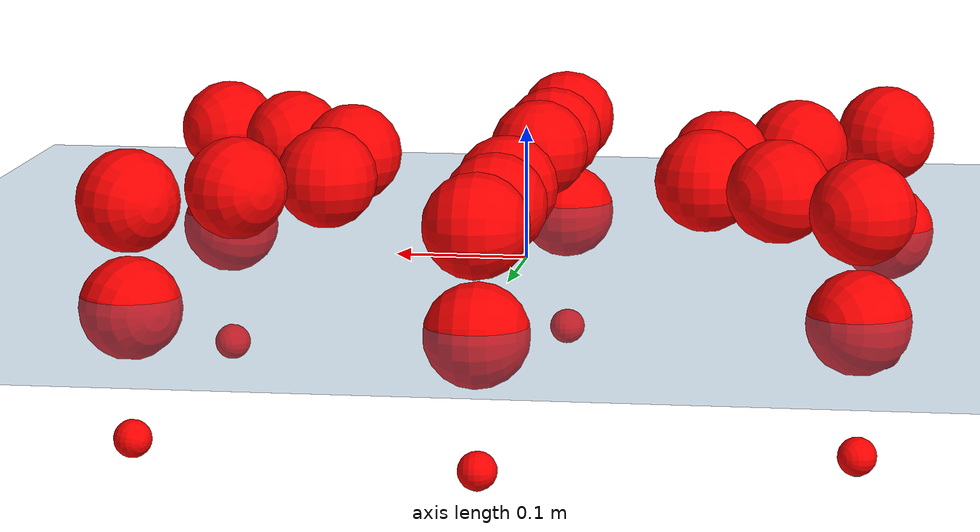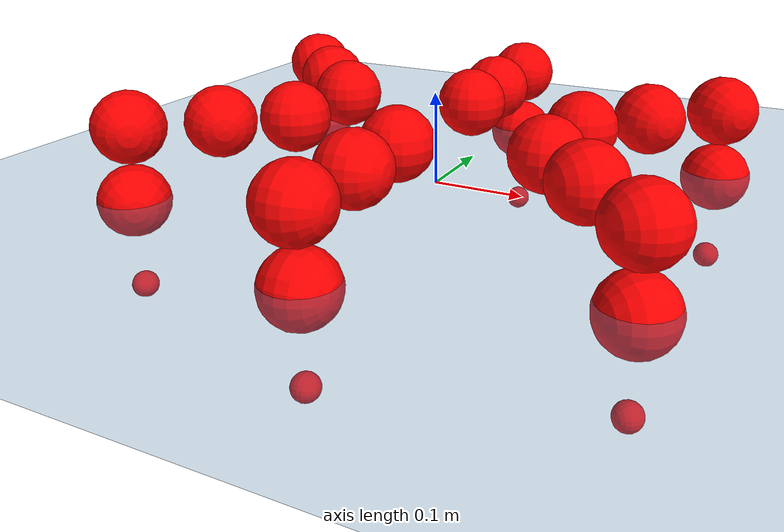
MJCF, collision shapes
<mujoco model="Golem">
  <compiler angle="radian" assetdir="assets" balanceinertia="true" inertiafromgeom="false"/>

  <option timestep="0.005" density="1.2" viscosity="2e-05"/>

  <size nkey="1"/>

  <visual>
    <quality shadowsize="8192"/>
    <map shadowclip="0.5"/>
  </visual>

  <default>
    <default class="/">
      <joint armature="0.01" damping="0.01" frictionloss="0.01"/>
      <geom contype="0" conaffinity="0" group="1" solref="-1000 -80"/>
      <site size="0.01 0.005 0.005" group="5"/>
      <general forcelimited="true" biastype="affine" gainprm="25" biasprm="0 -25 -0.5"/>
      <default class="visual">
        <geom type="mesh" group="2"/>
      </default>
      <default class="collision">
        <geom group="3"/>
      </default>
      <default class="foot">
        <geom size="0.01 0 0" condim="6" group="4" priority="1" solimp="0.015 1 0.01"/>
      </default>
      <default class="reward_collision_sphere">
        <geom group="5" rgba="1 0 0 1"/>
      </default>
    </default>
  </default>

  <asset>
    <texture type="skybox" colorspace="auto" name="//unnamed_texture_0" builtin="gradient" rgb1="0.95 0.95 0.95" rgb2="0.95 0.95 0.95" width="100" height="600"/>
    <texture type="2d" colorspace="auto" name="texplane" builtin="checker" rgb1="0.345 0.575 0.748" rgb2="0.345 0.575 0.748" markrgb="1 1 1" width="512" height="512"/>
    <material name="MatPlane" class="/" texture="texplane" texuniform="true" texrepeat="2 2" specular="0.9"/>
    <mesh name="body" class="/" file="body.stl" scale="0.001 0.001 0.001"/>
    <mesh name="coxa" class="/" file="coxa.stl" scale="0.001 0.001 0.001"/>
    <mesh name="femur" class="/" file="femur.stl" scale="0.001 0.001 0.001"/>
    <mesh name="tibia" class="/" file="tibia.stl" scale="0.001 0.001 0.001"/>
    <mesh name="tarsus" class="/" file="tarsus.stl" scale="0.001 0.001 0.001"/>
  </asset>

  <worldbody>
    <geom name="floor" class="/" size="100 100 0.125" type="plane" group="0" material="MatPlane"/>
    <light name="toplight_shadow" class="/" pos="0 0 5" dir="0.0990148 0.0990148 -0.990148" type="directional" ambient="0.04 0.04 0.04" diffuse="0.55 0.55 0.55" specular="0.12 0.12 0.12"/>
    <light name="toplight_fill" class="/" pos="0 0 5" dir="0.0990148 0.0990148 -0.990148" type="directional" castshadow="false" ambient="0.04 0.04 0.04" diffuse="0.3 0.3 0.3" specular="0.08 0.08 0.08"/>
    <body name="trunk" pos="-8.78247e-05 0.000949862 -0.00262111" quat="0.999999 -0.000198657 0.00108568 0.000871467">
      <inertial pos="0.00173155 -0.00166539 -0.00104084" quat="0.999996 0.00183657 0.00162596 0.00118662" mass="3.04684" diaginertia="0.00608186 0.00465608 0.0153677"/>
      <joint name="//unnamed_joint_0" type="free"/>
      <geom name="//unnamed_geom_1" class="/" pos="0 0 0.0697413" quat="1 0 0 0" type="mesh" rgba="0.9 0.9 0.9 1" mesh="body"/>
      <site name="imu" class="/" pos="0.118383 0.0139384 0.119253" size="0.00954346"/>
      <camera name="track" class="/" pos="0 -1.73283 0" quat="0.707107 0.707107 0 0" mode="trackcom"/>
      <camera name="ego_camera" class="/" pos="0.117899 0 0.108971" quat="-0.5 -0.5 0.5 0.5"/>
      <body name="coxa_RR" pos="-0.1626 -0.0720185 0.0718482" quat="0.382798 9.28791e-05 0.000927237 -0.923831">
        <inertial pos="0.00278696 0.000510181 -0.00202973" quat="0.999972 0.000380001 -0.00251277 0.00709323" mass="0.179832" diaginertia="0.00612468 0.0050439 0.0156963"/>
        <joint name="coxa_joint_RR" class="/" pos="0 0 0" axis="-8.71478e-05 0.000674029 -1" range="-3.11051 3.13141" armature="0.00896237" damping="0" frictionloss="0.0100181"/>
        <geom name="//unnamed_geom_2" class="/" type="mesh" rgba="0.2 0.2 0.2 1" mesh="coxa"/>
        <geom name="//unnamed_geom_3" class="reward_collision_sphere" size="0.0381738" pos="-0.0272075 0 0"/>
        <body name="femur_RR" pos="0.0513733 -0.00134626 0.00161088" quat="0.499394 -0.499417 0.500607 0.500581">
          <inertial pos="7.14252e-05 0.00215189 0.00216007" quat="0.999918 0.000266036 0.0007158 0.0128194" mass="0.166457" diaginertia="0.00610853 0.00461592 0.0148685"/>
          <joint name="femur_joint_RR" class="/" pos="0 0 0" axis="-0.00512212 -0.00162143 -0.999986" range="-3.12918 3.12801" armature="0.0108211" damping="0.00727138" frictionloss="0.00962577"/>
          <geom name="//unnamed_geom_4" class="/" type="mesh" rgba="0.9 0.9 0.9 1" mesh="femur"/>
          <geom name="//unnamed_geom_5" class="reward_collision_sphere" size="0.0381738"/>
          <body name="tibia_RR" pos="-0.00277846 -0.0921667 0.000333068" quat="4.76552e-06 1 -1.38726e-05 7.3515e-06">
            <inertial pos="-0.000619283 0.00253948 -0.000859822" quat="1 4.95535e-05 -0.000193331 0.000350387" mass="0.167742" diaginertia="0.00594767 0.0046877 0.0149921"/>
            <joint name="tibia_joint_RR" class="/" pos="0 0 0" axis="-0.000939943 -0.0135742 0.999907" range="-3.09062 3.12566" armature="0.00834421" damping="0.00805317" frictionloss="0.0103979"/>
            <geom name="//unnamed_geom_6" class="/" type="mesh" rgba="0.2 0.2 0.2 1" mesh="tibia"/>
            <geom name="//unnamed_geom_7" class="reward_collision_sphere" size="0.0381738"/>
            <body name="tarsus_RR" pos="0.0792018 0.00297323 -0.00213407" quat="0.999999 0.000974521 0.000467742 -0.00028586">
              <inertial pos="0.0564958 0.00127591 0.00280518" quat="0.495489 0.495113 0.502932 0.506373" mass="0.167783" diaginertia="0.00586213 0.0047137 0.0151902"/>
              <joint name="tarsus_joint_RR" class="/" pos="0 0 0" axis="0.000261891 -0.014216 0.999899" range="-3.18461 3.15642" armature="0.00928301" damping="0.014402" frictionloss="0.00903393"/>
              <geom name="//unnamed_geom_8" class="/" type="mesh" rgba="0.9 0.9 0.9 1" mesh="tarsus"/>
              <geom name="foot_1" class="foot" size="0.00856271" pos="0.101575 0 0" quat="0 -0.707107 0 0.707107"/>
              <geom name="//unnamed_geom_10" class="reward_collision_sphere" size="0.0381738"/>
              <geom name="//unnamed_geom_11" class="reward_collision_sphere" size="0.0143152" pos="0.0974934 0 0"/>
              <site name="foot_1" class="foot" pos="0.101575 0 0" quat="0 -0.707107 0 0.707107" size="0.00954346"/>
            </body>
          </body>
        </body>
      </body>
      <body name="coxa_RM" pos="0.00175729 -0.117274 0.0723749" quat="0.707222 -0.000251706 -0.00014183 -0.706992">
        <inertial pos="-0.000731044 -0.000308764 -0.0026455" quat="0.999946 -0.00690709 0.000306719 -0.00774059" mass="0.173854" diaginertia="0.00624796 0.00515619 0.0163076"/>
        <joint name="coxa_joint_RM" class="/" pos="0 0 0" axis="-0.00892386 -0.0022708 -0.999958" range="-3.14442 3.09554" armature="0.00954292" damping="0.0102895" frictionloss="0.0108089"/>
        <geom name="//unnamed_geom_12" class="/" type="mesh" rgba="0.2 0.2 0.2 1" mesh="coxa"/>
        <geom name="//unnamed_geom_13" class="reward_collision_sphere" size="0.0381738" pos="-0.0272075 0 0"/>
        <body name="femur_RM" pos="0.0522544 -0.00101959 -0.00120597" quat="0.500042 -0.4995 0.500311 0.500146">
          <inertial pos="0.000321646 0.00265997 0.000608268" quat="0.999988 -0.00337123 -0.00259957 -0.00226005" mass="0.178759" diaginertia="0.00592961 0.00487836 0.0150113"/>
          <joint name="femur_joint_RM" class="/" pos="0 0 0" axis="-0.000943024 0.00032034 -1" range="-3.08395 3.17807" armature="0.0109062" damping="0.0177386" frictionloss="0.0108129"/>
          <geom name="//unnamed_geom_14" class="/" type="mesh" rgba="0.9 0.9 0.9 1" mesh="femur"/>
          <geom name="//unnamed_geom_15" class="reward_collision_sphere" size="0.0381738"/>
          <body name="tibia_RM" pos="-0.000232724 -0.0932362 7.13194e-05" quat="-0.000477544 1 -0.000371152 0.000325214">
            <inertial pos="-0.000729177 7.69375e-05 0.00285607" quat="0.999993 0.00177893 -0.00161578 -0.0027146" mass="0.179467" diaginertia="0.00613954 0.00486315 0.0149985"/>
            <joint name="tibia_joint_RM" class="/" pos="0 0 0" axis="0.00884989 -0.00630191 0.999941" range="-3.11314 3.19383" armature="0.00840618" damping="0.0190774" frictionloss="0.0107341"/>
            <geom name="//unnamed_geom_16" class="/" type="mesh" rgba="0.2 0.2 0.2 1" mesh="tibia"/>
            <geom name="//unnamed_geom_17" class="reward_collision_sphere" size="0.0381738"/>
            <body name="tarsus_RM" pos="0.0780197 -0.00159554 -7.0682e-05" quat="0.999999 0.000361767 -0.00134337 -7.49827e-05">
              <inertial pos="0.0549455 -0.000808817 0.000694054" quat="0.501629 0.499863 0.499471 0.499033" mass="0.185635" diaginertia="0.00637229 0.00503087 0.0158843"/>
              <joint name="tarsus_joint_RM" class="/" pos="0 0 0" axis="-0.00196504 0.00522124 0.999984" range="-3.1201 3.15131" armature="0.00873057" damping="0.0161484" frictionloss="0.00934668"/>
              <geom name="//unnamed_geom_18" class="/" type="mesh" rgba="0.9 0.9 0.9 1" mesh="tarsus"/>
              <geom name="foot_2" class="foot" size="0.00862169" pos="0.101575 0 0" quat="0 -0.707107 0 0.707107"/>
              <geom name="//unnamed_geom_20" class="reward_collision_sphere" size="0.0381738"/>
              <geom name="//unnamed_geom_21" class="reward_collision_sphere" size="0.0143152" pos="0.0974934 0 0"/>
              <site name="foot_2" class="foot" pos="0.101575 0 0" quat="0 -0.707107 0 0.707107" size="0.00954346"/>
            </body>
          </body>
        </body>
      </body>
      <body name="coxa_RF" pos="0.162533 -0.0737877 0.0718604" quat="0.923901 0.000397808 0.000347062 -0.382632">
        <inertial pos="-0.00234244 -0.000928507 -0.00263165" quat="0.999919 0.00689979 -0.00743938 -0.00768493" mass="0.172612" diaginertia="0.00623752 0.00491692 0.0158856"/>
        <joint name="coxa_joint_RF" class="/" pos="0 0 0" axis="0.00371849 0.00230786 -0.99999" range="-3.15688 3.08651" armature="0.00994784" damping="0.0185241" frictionloss="0.0107957"/>
        <geom name="//unnamed_geom_22" class="/" type="mesh" rgba="0.2 0.2 0.2 1" mesh="coxa"/>
        <geom name="//unnamed_geom_23" class="reward_collision_sphere" size="0.0381738" pos="-0.0272075 0 0"/>
        <body name="femur_RF" pos="0.0556502 -0.00165165 0.0010967" quat="0.501328 -0.499569 0.499781 0.499321">
          <inertial pos="-0.000873233 0.000291309 0.000258931" quat="0.999939 -0.00360721 6.16389e-05 0.010434" mass="0.174192" diaginertia="0.00597033 0.0047898 0.0148917"/>
          <joint name="femur_joint_RF" class="/" pos="0 0 0" axis="0.00248329 0.00429256 -0.999988" range="-3.10583 3.13694" armature="0.00921808" damping="0.00994049" frictionloss="0.00903521"/>
          <geom name="//unnamed_geom_24" class="/" type="mesh" rgba="0.9 0.9 0.9 1" mesh="femur"/>
          <geom name="//unnamed_geom_25" class="reward_collision_sphere" size="0.0381738"/>
          <body name="tibia_RF" pos="0.00235392 -0.0914395 0.00182743" quat="-0.000303541 1 0.000457301 -7.67434e-05">
            <inertial pos="0.000659258 -0.00244017 -0.00281437" quat="0.999912 -0.00249814 -0.00303451 0.0127094" mass="0.173083" diaginertia="0.00592685 0.0048061 0.015424"/>
            <joint name="tibia_joint_RF" class="/" pos="0 0 0" axis="-0.00386618 0.0111467 0.99993" stiffness="0.0115775" range="-3.17828 3.13271" armature="0.00941209" damping="0.0182287" frictionloss="0.00837844"/>
            <geom name="//unnamed_geom_26" class="/" type="mesh" rgba="0.2 0.2 0.2 1" mesh="tibia"/>
            <geom name="//unnamed_geom_27" class="reward_collision_sphere" size="0.0381738"/>
            <body name="tarsus_RF" pos="0.0793155 -0.00186772 -0.00136697" quat="1 -3.63851e-05 3.32916e-05 -2.14597e-05">
              <inertial pos="0.0543731 -0.000762088 0.00103634" quat="0.497439 0.501101 0.498431 0.50301" mass="0.168804" diaginertia="0.00586785 0.0046066 0.0148309"/>
              <joint name="tarsus_joint_RF" class="/" pos="0 0 0" axis="-0.00971367 -0.00711226 0.999928" stiffness="0.0035907" range="-3.12001 3.15077" armature="0.00939041" damping="0" frictionloss="0.010645"/>
              <geom name="//unnamed_geom_28" class="/" type="mesh" rgba="0.9 0.9 0.9 1" mesh="tarsus"/>
              <geom name="foot_3" class="foot" size="0.00996559" pos="0.101575 0 0" quat="0 -0.707107 0 0.707107"/>
              <geom name="//unnamed_geom_30" class="reward_collision_sphere" size="0.0381738"/>
              <geom name="//unnamed_geom_31" class="reward_collision_sphere" size="0.0143152" pos="0.0974934 0 0"/>
              <site name="foot_3" class="foot" pos="0.101575 0 0" quat="0 -0.707107 0 0.707107" size="0.00954346"/>
            </body>
          </body>
        </body>
      </body>
      <body name="coxa_LR" pos="-0.160911 0.0733811 0.0739316" quat="0.382723 -0.000345175 0.00142092 0.923862">
        <inertial pos="-0.00183852 0.00259253 -0.00247327" quat="0.999994 -0.000595323 -0.00296887 0.00154524" mass="0.173297" diaginertia="0.00604025 0.00467127 0.0151871"/>
        <joint name="coxa_joint_LR" class="/" pos="0 0 0" axis="-0.0135409 0.0103873 -0.999854" stiffness="0.00884082" range="-3.17281 3.19131" armature="0.0093689" damping="0.0159473" frictionloss="0.0108669"/>
        <geom name="//unnamed_geom_32" class="/" type="mesh" rgba="0.2 0.2 0.2 1" mesh="coxa"/>
        <geom name="//unnamed_geom_33" class="reward_collision_sphere" size="0.0381738" pos="-0.0272075 0 0"/>
        <body name="femur_LR" pos="0.0528182 0.00156045 0.00244304" quat="0.499894 -0.499759 0.499923 0.500423">
          <inertial pos="-0.00123149 0.0027004 0.000596533" quat="0.99993 -0.0102632 -0.00595462 -0.000295883" mass="0.170758" diaginertia="0.00637638 0.0048773 0.0149199"/>
          <joint name="femur_joint_LR" class="/" pos="0 0 0" axis="0.00845357 0.00261825 0.999961" range="-3.17733 3.16213" armature="0.0103776" damping="0.00577451" frictionloss="0.00969587"/>
          <geom name="//unnamed_geom_34" class="/" type="mesh" rgba="0.9 0.9 0.9 1" mesh="femur"/>
          <geom name="//unnamed_geom_35" class="reward_collision_sphere" size="0.0381738"/>
          <body name="tibia_LR" pos="0.00159137 -0.0942005 -0.00340345" quat="-0.000185473 1 1.62814e-07 -0.000384644">
            <inertial pos="-0.00212449 0.000803016 0.00293724" quat="0.999907 -0.00680853 0.0038349 0.0112072" mass="0.178612" diaginertia="0.006047 0.00495996 0.0150207"/>
            <joint name="tibia_joint_LR" class="/" pos="0 0 0" axis="0.00228958 0.00415149 -0.999989" range="-3.09302 3.1947" armature="0.0080966" damping="0" frictionloss="0.0094784"/>
            <geom name="//unnamed_geom_36" class="/" type="mesh" rgba="0.2 0.2 0.2 1" mesh="tibia"/>
            <geom name="//unnamed_geom_37" class="reward_collision_sphere" size="0.0381738"/>
            <body name="tarsus_LR" pos="0.0797004 -0.000908107 0.00149035" quat="1 -4.62237e-05 -4.58926e-05 4.85165e-06">
              <inertial pos="0.054272 -0.00254444 -0.000801484" quat="0.500109 0.499508 0.500768 0.499615" mass="0.166859" diaginertia="0.00608172 0.00495178 0.0156505"/>
              <joint name="tarsus_joint_LR" class="/" pos="0 0 0" axis="-0.000779139 0.00157446 -0.999998" stiffness="0.0026096" range="-3.12955 3.18952" armature="0.00955729" damping="0.00418917" frictionloss="0.00838304"/>
              <geom name="//unnamed_geom_38" class="/" type="mesh" rgba="0.9 0.9 0.9 1" mesh="tarsus"/>
              <geom name="foot_4" class="foot" size="0.0104576" pos="0.101575 0 0" quat="0.707107 0 -0.707107 0"/>
              <geom name="//unnamed_geom_40" class="reward_collision_sphere" size="0.0381738"/>
              <geom name="//unnamed_geom_41" class="reward_collision_sphere" size="0.0143152" pos="0.0974934 0 0"/>
              <site name="foot_4" class="foot" pos="0.101575 0 0" quat="0.707107 0 -0.707107 0" size="0.00954346"/>
            </body>
          </body>
        </body>
      </body>
      <body name="coxa_LM" pos="0.002895 0.1135 0.0718786" quat="0.70718 -9.9781e-06 -0.000221925 0.707033">
        <inertial pos="0.00060277 -1.65998e-05 -0.00220087" quat="0.999992 -0.0017538 -0.00355851 0.00111586" mass="0.171262" diaginertia="0.00627578 0.0048541 0.0153966"/>
        <joint name="coxa_joint_LM" class="/" pos="0 0 0" axis="-0.00350444 0.0115743 -0.999927" range="-3.12279 3.14282" armature="0.00988943" damping="0.00394245" frictionloss="0.00949204"/>
        <geom name="//unnamed_geom_42" class="/" type="mesh" rgba="0.2 0.2 0.2 1" mesh="coxa"/>
        <geom name="//unnamed_geom_43" class="reward_collision_sphere" size="0.0381738" pos="-0.0272075 0 0"/>
        <body name="femur_LM" pos="0.050635 0.0022738 -2.3731e-05" quat="0.500493 -0.499496 0.500123 0.499887">
          <inertial pos="-0.002717 -0.000167367 -0.00201289" quat="0.999902 0.0010703 0.00155553 0.0138966" mass="0.168156" diaginertia="0.00600302 0.004712 0.015025"/>
          <joint name="femur_joint_LM" class="/" pos="0 0 0" axis="0.00883527 0.000406811 0.999961" stiffness="0.00334633" range="-3.14415 3.09692" armature="0.00846209" damping="0" frictionloss="0.00821358"/>
          <geom name="//unnamed_geom_44" class="/" type="mesh" rgba="0.9 0.9 0.9 1" mesh="femur"/>
          <geom name="//unnamed_geom_45" class="reward_collision_sphere" size="0.0381738"/>
          <body name="tibia_LM" pos="-0.000552612 -0.0911023 -0.000188917" quat="0.0010056 0.999999 -0.000205657 -6.44887e-05">
            <inertial pos="0.00175451 0.000392352 -4.43821e-05" quat="0.999989 -0.00203156 -0.00231085 -0.0034179" mass="0.174819" diaginertia="0.00601285 0.00475515 0.0149918"/>
            <joint name="tibia_joint_LM" class="/" pos="0 0 0" axis="-0.0120576 0.0087446 -0.999889" range="-3.08412 3.09696" armature="0.0102519" damping="0.000997254" frictionloss="0.0108859"/>
            <geom name="//unnamed_geom_46" class="/" type="mesh" rgba="0.2 0.2 0.2 1" mesh="tibia"/>
            <geom name="//unnamed_geom_47" class="reward_collision_sphere" size="0.0381738"/>
            <body name="tarsus_LM" pos="0.0778847 -0.00144795 0.000113335" quat="1 8.13492e-05 -0.000191665 -9.9829e-05">
              <inertial pos="0.052572 -0.00233988 0.000640797" quat="0.507325 0.501265 0.493007 0.498296" mass="0.169196" diaginertia="0.00600043 0.00467316 0.0148511"/>
              <joint name="tarsus_joint_LM" class="/" pos="0 0 0" axis="0.00986647 -0.00726462 -0.999925" stiffness="0.0120445" range="-3.14398 3.14511" armature="0.00977632" damping="0.0196471" frictionloss="0.0105688"/>
              <geom name="//unnamed_geom_48" class="/" type="mesh" rgba="0.9 0.9 0.9 1" mesh="tarsus"/>
              <geom name="foot_5" class="foot" size="0.0105167" pos="0.101575 0 0" quat="0.707107 0 -0.707107 0"/>
              <geom name="//unnamed_geom_50" class="reward_collision_sphere" size="0.0381738"/>
              <geom name="//unnamed_geom_51" class="reward_collision_sphere" size="0.0143152" pos="0.0974934 0 0"/>
              <site name="foot_5" class="foot" pos="0.101575 0 0" quat="0.707107 0 -0.707107 0" size="0.00954346"/>
            </body>
          </body>
        </body>
      </body>
      <body name="coxa_LF" pos="0.163588 0.0702568 0.0699754" quat="0.923787 -9.0544e-06 -0.000163266 0.382906">
        <inertial pos="-0.00233055 -0.00179554 -0.00264567" quat="0.999999 -0.000733669 -0.000165813 0.00117425" mass="0.166933" diaginertia="0.00592652 0.004595 0.0153464"/>
        <joint name="coxa_joint_LF" class="/" pos="0 0 0" axis="0.00928215 -0.000407356 -0.999957" range="-3.18593 3.14058" armature="0.0100134" damping="0.0112581" frictionloss="0.00820212"/>
        <geom name="//unnamed_geom_52" class="/" type="mesh" rgba="0.2 0.2 0.2 1" mesh="coxa"/>
        <geom name="//unnamed_geom_53" class="reward_collision_sphere" size="0.0381738" pos="-0.0272075 0 0"/>
        <body name="femur_LF" pos="0.0555512 0.00247921 0.00110779" quat="0.499799 -0.501082 0.499717 0.4994">
          <inertial pos="-0.000355942 -0.00257661 0.000225704" quat="1 -0.000533608 0.000303838 0.000106658" mass="0.168859" diaginertia="0.00575568 0.00472576 0.0148458"/>
          <joint name="femur_joint_LF" class="/" pos="0 0 0" axis="0.0124375 0.00757458 0.999894" range="-3.17696 3.19559" armature="0.00921307" damping="0.00441729" frictionloss="0.00938734"/>
          <geom name="//unnamed_geom_54" class="/" type="mesh" rgba="0.9 0.9 0.9 1" mesh="femur"/>
          <geom name="//unnamed_geom_55" class="reward_collision_sphere" size="0.0381738"/>
          <body name="tibia_LF" pos="-0.0003054 -0.0934568 0.000410254" quat="-0.000140035 0.999999 -9.62473e-05 -0.00109508">
            <inertial pos="0.00239101 0.00275919 -0.00207206" quat="0.999993 0.00181172 -0.000907809 -0.00319693" mass="0.179931" diaginertia="0.00594525 0.00490164 0.014943"/>
            <joint name="tibia_joint_LF" class="/" pos="0 0 0" axis="0.00726932 -0.00961991 -0.999927" stiffness="0.0012887" range="-3.15489 3.08279" armature="0.00903133" damping="0.00876118" frictionloss="0.00957982"/>
            <geom name="//unnamed_geom_56" class="/" type="mesh" rgba="0.2 0.2 0.2 1" mesh="tibia"/>
            <geom name="//unnamed_geom_57" class="reward_collision_sphere" size="0.0381738"/>
            <body name="tarsus_LF" pos="0.0784842 0.00122015 -0.00310075" quat="1 -6.40977e-05 9.99922e-06 9.83407e-05">
              <inertial pos="0.0534887 0.000310755 7.15105e-05" quat="0.506604 0.494619 0.499401 0.499303" mass="0.171372" diaginertia="0.00609489 0.00491242 0.01561"/>
              <joint name="tarsus_joint_LF" class="/" pos="0 0 0" axis="5.28905e-05 -0.00606289 -0.999982" stiffness="0.0285391" range="-3.10243 3.08399" armature="0.00926189" damping="0.035489" frictionloss="0.00870502"/>
              <geom name="//unnamed_geom_58" class="/" type="mesh" rgba="0.9 0.9 0.9 1" mesh="tarsus"/>
              <geom name="foot_6" class="foot" size="0.00966131" pos="0.101575 0 0" quat="0.707107 0 -0.707107 0"/>
              <geom name="//unnamed_geom_60" class="reward_collision_sphere" size="0.0381738"/>
              <geom name="//unnamed_geom_61" class="reward_collision_sphere" size="0.0143152" pos="0.0974934 0 0"/>
              <site name="foot_6" class="foot" pos="0.101575 0 0" quat="0.707107 0 -0.707107 0" size="0.00954346"/>
            </body>
          </body>
        </body>
      </body>
    </body>
  </worldbody>

  <contact>
    <pair class="/" geom1="floor" geom2="foot_1" name="//unnamed_contact_0"/>
    <pair class="/" geom1="floor" geom2="foot_2" name="//unnamed_contact_1"/>
    <pair class="/" geom1="floor" geom2="foot_3" name="//unnamed_contact_2"/>
    <pair class="/" geom1="floor" geom2="foot_4" name="//unnamed_contact_3"/>
    <pair class="/" geom1="floor" geom2="foot_5" name="//unnamed_contact_4"/>
    <pair class="/" geom1="floor" geom2="foot_6" name="//unnamed_contact_5"/>
  </contact>

  <actuator>
    <general name="coxa_joint_RR" class="/" joint="coxa_joint_RR" forcerange="-7.02068 7.02068" gainprm="22.9111" biasprm="0 -22.9111 -0.50817"/>
    <general name="femur_joint_RR" class="/" joint="femur_joint_RR" forcerange="-6.97344 6.97344" gainprm="22.9111" biasprm="0 -22.9111 -0.50817"/>
    <general name="tibia_joint_RR" class="/" joint="tibia_joint_RR" forcerange="-6.9043 6.9043" gainprm="22.9111" biasprm="0 -22.9111 -0.50817"/>
    <general name="tarsus_joint_RR" class="/" joint="tarsus_joint_RR" forcerange="-7.70335 7.70335" gainprm="22.9111" biasprm="0 -22.9111 -0.50817"/>
    <general name="coxa_joint_RM" class="/" joint="coxa_joint_RM" forcerange="-6.65798 6.65798" gainprm="22.9111" biasprm="0 -22.9111 -0.50817"/>
    <general name="femur_joint_RM" class="/" joint="femur_joint_RM" forcerange="-7.70009 7.70009" gainprm="22.9111" biasprm="0 -22.9111 -0.50817"/>
    <general name="tibia_joint_RM" class="/" joint="tibia_joint_RM" forcerange="-7.03555 7.03555" gainprm="22.9111" biasprm="0 -22.9111 -0.50817"/>
    <general name="tarsus_joint_RM" class="/" joint="tarsus_joint_RM" forcerange="-7.34829 7.34829" gainprm="22.9111" biasprm="0 -22.9111 -0.50817"/>
    <general name="coxa_joint_RF" class="/" joint="coxa_joint_RF" forcerange="-6.2309 6.2309" gainprm="22.9111" biasprm="0 -22.9111 -0.50817"/>
    <general name="femur_joint_RF" class="/" joint="femur_joint_RF" forcerange="-6.69074 6.69074" gainprm="22.9111" biasprm="0 -22.9111 -0.50817"/>
    <general name="tibia_joint_RF" class="/" joint="tibia_joint_RF" forcerange="-7.18492 7.18492" gainprm="22.9111" biasprm="0 -22.9111 -0.50817"/>
    <general name="tarsus_joint_RF" class="/" joint="tarsus_joint_RF" forcerange="-6.71305 6.71305" gainprm="22.9111" biasprm="0 -22.9111 -0.50817"/>
    <general name="coxa_joint_LR" class="/" joint="coxa_joint_LR" forcerange="-7.09659 7.09659" gainprm="22.9111" biasprm="0 -22.9111 -0.50817"/>
    <general name="femur_joint_LR" class="/" joint="femur_joint_LR" forcerange="-6.9345 6.9345" gainprm="22.9111" biasprm="0 -22.9111 -0.50817"/>
    <general name="tibia_joint_LR" class="/" joint="tibia_joint_LR" forcerange="-7.22461 7.22461" gainprm="22.9111" biasprm="0 -22.9111 -0.50817"/>
    <general name="tarsus_joint_LR" class="/" joint="tarsus_joint_LR" forcerange="-6.88582 6.88582" gainprm="22.9111" biasprm="0 -22.9111 -0.50817"/>
    <general name="coxa_joint_LM" class="/" joint="coxa_joint_LM" forcerange="-7.11395 7.11395" gainprm="22.9111" biasprm="0 -22.9111 -0.50817"/>
    <general name="femur_joint_LM" class="/" joint="femur_joint_LM" forcerange="-7.17211 7.17211" gainprm="22.9111" biasprm="0 -22.9111 -0.50817"/>
    <general name="tibia_joint_LM" class="/" joint="tibia_joint_LM" forcerange="-6.98487 6.98487" gainprm="22.9111" biasprm="0 -22.9111 -0.50817"/>
    <general name="tarsus_joint_LM" class="/" joint="tarsus_joint_LM" forcerange="-7.30676 7.30676" gainprm="22.9111" biasprm="0 -22.9111 -0.50817"/>
    <general name="coxa_joint_LF" class="/" joint="coxa_joint_LF" forcerange="-6.4124 6.4124" gainprm="22.9111" biasprm="0 -22.9111 -0.50817"/>
    <general name="femur_joint_LF" class="/" joint="femur_joint_LF" forcerange="-6.88893 6.88893" gainprm="22.9111" biasprm="0 -22.9111 -0.50817"/>
    <general name="tibia_joint_LF" class="/" joint="tibia_joint_LF" forcerange="-7.06151 7.06151" gainprm="22.9111" biasprm="0 -22.9111 -0.50817"/>
    <general name="tarsus_joint_LF" class="/" joint="tarsus_joint_LF" forcerange="-6.9239 6.9239" gainprm="22.9111" biasprm="0 -22.9111 -0.50817"/>
  </actuator>

  <sensor>
    <gyro site="imu" name="imu_angular_velocity"/>
    <velocimeter site="imu" name="imu_linear_velocity"/>
    <framelinvel objtype="site" objname="foot_1" name="foot_1_global_linear_velocity"/>
    <framelinvel objtype="site" objname="foot_2" name="foot_2_global_linear_velocity"/>
    <framelinvel objtype="site" objname="foot_3" name="foot_3_global_linear_velocity"/>
    <framelinvel objtype="site" objname="foot_4" name="foot_4_global_linear_velocity"/>
    <framelinvel objtype="site" objname="foot_5" name="foot_5_global_linear_velocity"/>
    <framelinvel objtype="site" objname="foot_6" name="foot_6_global_linear_velocity"/>
  </sensor>

  <keyframe>
    <key name="home" qpos="0 0 0.1457 1 0 0 0 0 0 0 0 0 0 0 0 0 0 0 0 0 0 0 0 0 0 0 0 0 0 0 0"/>
  </keyframe>
</mujoco>
